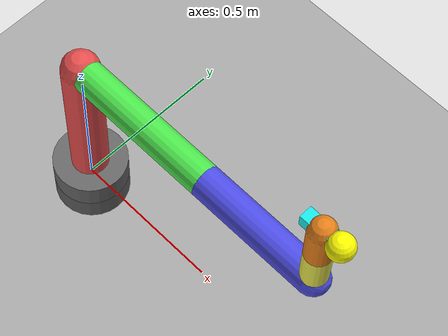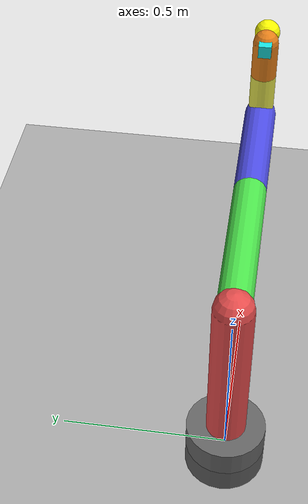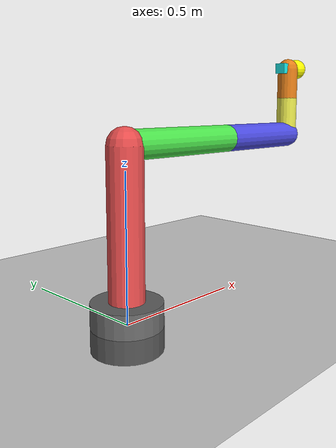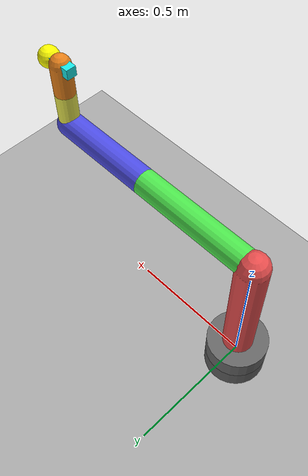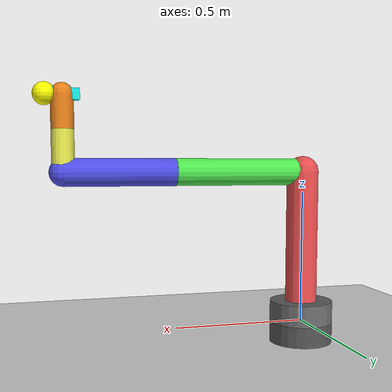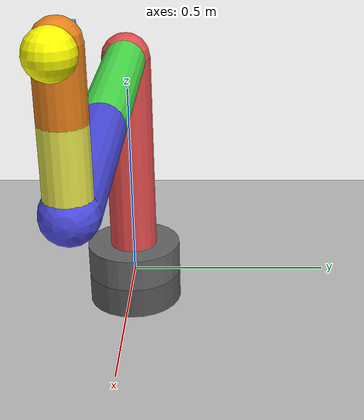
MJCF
<mujoco model="simple_6dof_serial_arm">
  <!--
    Minimal 6-revolute-joint spatial serial arm.
    Six revolute joints -> 6 DOF, matching the 6 DOF of a free rigid body in 3D
    (3 position + 3 orientation of the end-effector).
  -->
  <compiler angle="radian"/>
  <option timestep="0.01" gravity="0 0 0"/>

  <worldbody>
    <light diffuse="0.5 0.5 0.5" pos="2 2 3" dir="-2 -2 -3"/>
    <geom type="plane" size="2 2 0.1" rgba="0.2 0.2 0.2 1"/>

    <!-- Base / ground link -->
    <body name="base" pos="0 0 0">
      <geom type="cylinder" size="0.12 0.08" rgba="0.4 0.4 0.4 1" euler="0 0 0"/>

      <!-- Joint 1: waist (Z axis) -->
      <body name="link1" pos="0 0 0.08">
        <joint name="joint1" type="hinge" axis="0 0 1" range="-3.14 3.14" damping="0.1"/>
        <geom type="capsule" fromto="0 0 0 0 0 0.5" size="0.06" rgba="0.9 0.3 0.3 1"/>

        <!-- Joint 2: shoulder (Y axis) -->
        <body name="link2" pos="0 0 0.5">
          <joint name="joint2" type="hinge" axis="0 1 0" range="-1.57 1.57" damping="0.1"/>
          <geom type="capsule" fromto="0 0 0 0.5 0 0" size="0.05" rgba="0.3 0.9 0.3 1"/>

          <!-- Joint 3: elbow (Y axis) -->
          <body name="link3" pos="0.5 0 0">
            <joint name="joint3" type="hinge" axis="0 1 0" range="-1.57 1.57" damping="0.1"/>
            <geom type="capsule" fromto="0 0 0 0.4 0 0" size="0.05" rgba="0.3 0.3 0.9 1"/>

            <!-- Joint 4: wrist roll (X axis) -->
            <body name="link4" pos="0.4 0 0">
              <joint name="joint4" type="hinge" axis="1 0 0" range="-3.14 3.14" damping="0.05"/>
              <geom type="capsule" fromto="0 0 0 0 0 0.15" size="0.04" rgba="0.9 0.9 0.3 1"/>

              <!-- Joint 5: wrist pitch (Y axis) -->
              <body name="link5" pos="0 0 0.15">
                <joint name="joint5" type="hinge" axis="0 1 0" range="-1.57 1.57" damping="0.05"/>
                <geom type="capsule" fromto="0 0 0 0 0 0.12" size="0.04" rgba="0.9 0.5 0.1 1"/>

                <!-- Joint 6: wrist yaw (Z axis) -->
                <body name="link6" pos="0 0 0.12">
                  <joint name="joint6" type="hinge" axis="0 0 1" range="-3.14 3.14" damping="0.05"/>
                  <geom type="box" size="0.06 0.02 0.02" rgba="0.1 0.9 0.9 1"/>

                  <!-- End-effector site -->
                  <site name="ee" pos="0.06 0 0" size="0.04" rgba="1 1 0 1"/>
                </body>
              </body>
            </body>
          </body>
        </body>
      </body>
    </body>
  </worldbody>

  <actuator>
    <motor joint="joint1" gear="1" ctrlrange="-50 50"/>
    <motor joint="joint2" gear="1" ctrlrange="-50 50"/>
    <motor joint="joint3" gear="1" ctrlrange="-50 50"/>
    <motor joint="joint4" gear="1" ctrlrange="-20 20"/>
    <motor joint="joint5" gear="1" ctrlrange="-20 20"/>
    <motor joint="joint6" gear="1" ctrlrange="-20 20"/>
  </actuator>
</mujoco>
